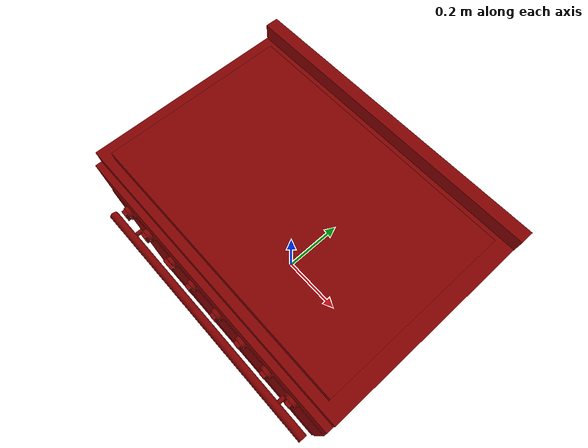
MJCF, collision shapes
<?xml version='1.0' encoding='UTF-8'?>
<mujoco model="model">
  <option timestep="0.002" gravity="0.0 0.0 -9.81"/>
  <compiler angle="radian"/>
  <asset>
    <mesh file="visuals/door.obj" name="door_vis"/>
    <mesh file="visuals/door_Clear.obj" name="door_Clear_vis"/>
    <mesh file="visuals/knob_front_center.obj" name="knob_front_center_vis"/>
    <mesh file="visuals/knob_front_left.obj" name="knob_front_left_vis"/>
    <mesh file="visuals/knob_front_right.obj" name="knob_front_right_vis"/>
    <mesh file="visuals/knob_rear_center.obj" name="knob_rear_center_vis"/>
    <mesh file="visuals/knob_rear_left.obj" name="knob_rear_left_vis"/>
    <mesh file="visuals/knob_rear_right.obj" name="knob_rear_right_vis"/>
    <mesh file="visuals/knob_temp.obj" name="knob_temp_vis"/>
    <mesh file="visuals/knob_time.obj" name="knob_time_vis"/>
    <mesh file="visuals/rack0.obj" name="rack0_vis"/>
    <mesh file="visuals/Body001.obj" name="Body001_vis"/>
    <texture file="visuals/T_BC001.png" name="Body001_material" type="2d"/>
    <material name="Body001_material" rgba="1 1 1 1.0" texture="Body001_material" shininess="0.4472135901451111" specular="3"/>
    <texture file="visuals/T_BC001.png" name="door_material" type="2d"/>
    <material name="door_material" rgba="1 1 1 1.0" texture="door_material" shininess="0.4472135901451111" specular="1"/>
    <texture file="visuals/T_BC001.png" name="door_Clear_material" type="2d"/>
    <material name="door_Clear_material" rgba="1 1 1 0.8" texture="door_Clear_material" shininess="0.4472135901451111" specular="0.3103448502657381"/>
    <texture file="visuals/T_BC001.png" name="knob_front_center_material" type="2d"/>
    <material name="knob_front_center_material" rgba="1 1 1 1.0" texture="knob_front_center_material" shininess="0.4472135901451111" specular="0.3103448502657381"/>
    <texture file="visuals/T_BC001.png" name="knob_front_left_material" type="2d"/>
    <material name="knob_front_left_material" rgba="1 1 1 1.0" texture="knob_front_left_material" shininess="0.4472135901451111" specular="0.3103448502657381"/>
    <texture file="visuals/T_BC001.png" name="knob_front_right_material" type="2d"/>
    <material name="knob_front_right_material" rgba="1 1 1 1.0" texture="knob_front_right_material" shininess="0.4472135901451111" specular="0.3103448502657381"/>
    <texture file="visuals/T_BC001.png" name="knob_rear_center_material" type="2d"/>
    <material name="knob_rear_center_material" rgba="1 1 1 1.0" texture="knob_rear_center_material" shininess="0.4472135901451111" specular="0.3103448502657381"/>
    <texture file="visuals/T_BC001.png" name="knob_rear_left_material" type="2d"/>
    <material name="knob_rear_left_material" rgba="1 1 1 1.0" texture="knob_rear_left_material" shininess="0.4472135901451111" specular="0.3103448502657381"/>
    <texture file="visuals/T_BC001.png" name="knob_rear_right_material" type="2d"/>
    <material name="knob_rear_right_material" rgba="1 1 1 1.0" texture="knob_rear_right_material" shininess="0.4472135901451111" specular="0.3103448502657381"/>
    <texture file="visuals/T_BC001.png" name="knob_temp_material" type="2d"/>
    <material name="knob_temp_material" rgba="1 1 1 1.0" texture="knob_temp_material" shininess="0.4472135901451111" specular="0.3103448502657381"/>
    <texture file="visuals/T_BC001.png" name="knob_time_material" type="2d"/>
    <material name="knob_time_material" rgba="1 1 1 1.0" texture="knob_time_material" shininess="0.4472135901451111" specular="0.3103448502657381"/>
    <texture file="visuals/T_BC001.png" name="rack0_material" type="2d"/>
    <material name="rack0_material" rgba="1 1 1 1.0" texture="rack0_material" shininess="0.4472135901451111" specular="2"/>
  </asset>
  <default>
    <default class="visual">
      <geom conaffinity="0" contype="0" group="1" type="mesh"/>
    </default>
    <default class="collision">
      <geom group="0" rgba="0.5 0 0 0.5"/>
    </default>
    <default class="spawn">
      <geom group="0" rgba="1 1 1 0.5" contype="0" conaffinity="0"/>
      <site group="0" rgba="1 1 1 0.5"/>
    </default>
    <default class="region">
      <geom group="1" conaffinity="0" contype="0" rgba="0 1 0 0"/>
    </default>
  </default>
  <worldbody>
    <body>
      <body name="object">
        <geom mesh="Body001_vis" type="mesh" solimp="0.998 0.998 0.001" solref="0.001 1" friction="0.95 0.3 0.1" class="visual" material="Body001_material"/>
        <geom class="collision" type="box" pos="0.00020489 0.03419053 -0.32283562" size="0.4453953504562378 0.3114505708217621 0.09341475367546082" quat="1.0 0.0 0.0 0.0"/>
        <geom class="collision" type="box" pos="0.00020489 0.03402106 0.33483633" size="0.4453953504562378 0.3116200566291809 0.09698358178138733" quat="1.0 0.0 0.0 0.0"/>
        <geom class="collision" type="box" pos="-0.43040445 0.03451906 0.00624013" size="0.014781756326556206 0.31124597787857056 0.23470935225486755" quat="1.0 0.0 0.0 0.0"/>
        <geom class="collision" type="box" pos="0.43071929 0.03346806 0.00624013" size="0.014881174080073833 0.31124594807624817 0.23470935225486755" quat="1.0 0.0 0.0 0.0"/>
        <geom class="collision" type="box" pos="0.00020489 0.33312962 -0.00134300" size="0.4453953504562378 0.01251149270683527 0.2447463721036911" quat="1.0 0.0 0.0 0.0"/>
        <geom class="collision" type="box" pos="0.00020489 0.32622731 0.43035719" size="0.4453953504562378 0.018547752872109413 0.04469680413603783" quat="1.0 0.0 0.0 0.0"/>
        <geom class="collision" type="box" pos="-0.40324122 -0.00720590 0.01569838" size="0.014781797304749489 0.23607884347438812 0.013486760668456554" quat="1.0 0.0 0.0 0.0"/>
        <geom class="collision" type="box" pos="0.40592659 -0.00720590 0.01569838" size="0.014781794510781765 0.23607884347438812 0.013486760668456554" quat="1.0 0.0 0.0 0.0"/>
        <geom class="collision" type="cylinder" pos="-0.39737013 -0.24187388 -0.44423994" size="0.025929519906640053 0.030012857168912888" quat="1.0 0.0 0.0 0.0"/>
        <geom class="collision" type="cylinder" pos="-0.39737013 0.29562125 -0.44423994" size="0.025929519906640053 0.030012857168912888" quat="1.0 0.0 0.0 0.0"/>
        <geom class="collision" type="cylinder" pos="0.39789397 -0.24187388 -0.44423994" size="0.025929519906640053 0.030012857168912888" quat="1.0 0.0 0.0 0.0"/>
        <geom class="collision" type="cylinder" pos="0.39789397 0.29562125 -0.44423994" size="0.025929519906640053 0.030012857168912888" quat="1.0 0.0 0.0 0.0"/>
        <geom class="collision" type="box" pos="0.00020489 -0.28630554 -0.34042615" size="0.4453953504562378 0.012395961210131645 0.07349462062120438" quat="1.0 0.0 0.0 0.0"/>
        <geom class="collision" type="box" pos="0.00020489 -0.28314411 0.32981452" size="0.44539615511894226 0.014023927971720695 0.06135963648557663" quat="1.0 0.0 0.0 0.0"/>
        <geom class="collision" type="box" pos="0.00628563 0.00986810 0.44937950" size="0.393888920545578 0.26198551058769226 0.017560163512825966" quat="1.0 0.0 0.0 0.0"/>
        <body name="door">
          <joint axis="1.0 0.0 0.0" pos="-0.00064370 -0.29751586 -0.24929851" limited="true" name="door_joint" range="0.0 1.5707963267948966" type="hinge" damping="1" frictionloss="1" armature=".01" stiffness="0.05"/>
          <geom mesh="door_vis" type="mesh" solimp="0.998 0.998 0.001" solref="0.001 1" friction="0.95 0.3 0.1" class="visual" material="door_material"/>
          <geom class="collision" type="box" pos="0.00000001 -0.28988966 0.00380169" size="0.4506116509437561 0.0088118314743042 0.25270822644233704" quat="1.0 0.0 0.0 0.0" name="door_main"/>
          <geom class="collision" type="cylinder" pos="-0.32991475 -0.31786835 0.17893517" size="0.006746548693627119 0.012276619672775269" quat="0.7071068286895752 0.7071067690849304 -1.5700924318127872e-16 -5.9269340452702814e-24"/>
          <geom class="collision" type="cylinder" pos="0.31512007 -0.31786835 0.17893517" size="0.006746548693627119 0.012276619672775269" quat="0.7071068286895752 0.7071067690849304 -1.5700924318127872e-16 -5.9269340452702814e-24"/>
          <geom class="collision" type="cylinder" pos="-0.00282189 -0.33929812 0.18105300" size="0.013173732906579971 0.42605987191200256" quat="0.5000000596046448 0.5 -0.4999999701976776 -0.5" name="door_handle_main"/>
          <geom class="collision" type="box" pos="0.00020489 -0.29479712 0.00074750" size="0.3188565969467163 0.002739383140578866 0.12557406723499298" quat="1.0 0.0 0.0 0.0"/>
          <body name="door_Clear">
            <geom mesh="door_Clear_vis" type="mesh" solimp="0.998 0.998 0.001" solref="0.001 1" friction="0.95 0.3 0.1" class="visual" material="door_Clear_material"/>
            <geom class="collision" type="box" pos="0.00020489 -0.29479712 0.00074750" size="0.3188565969467163 0.002739383140578866 0.12557406723499298" quat="1.0 0.0 0.0 0.0"/>
          </body>
        </body>
        <body name="knob_front_center">
          <joint axis="0.0 -1.0 0.0" pos="0.06840758 -0.31041008 0.32652795" limited="true" name="knob_front_center_joint" range="0.0 3.141592653589793" type="hinge" damping="0.05" frictionloss="0.75" armature="1"/>
          <geom mesh="knob_front_center_vis" type="mesh" solimp="0.998 0.998 0.001" solref="0.001 1" friction="0.95 0.3 0.1" class="visual" material="knob_front_center_material"/>
          <geom class="collision" type="cylinder" pos="0.06830750 -0.30637434 0.32651359" size="0.018944857642054558 0.005755343474447727" quat="0.7071068286895752 0.7071067690849304 -1.5700924318127872e-16 -5.9269340452702814e-24" friction="100 0.5 0.01"/>
          <geom class="collision" type="box" pos="0.06844643 -0.31593495 0.32681349" size="0.0076674893498420715 0.005506603978574276 0.017259594053030014" quat="1.0 0.0 0.0 0.0" name="knob_front_center_main" friction="100 0.5 0.01"/>
        </body>
        <body name="knob_front_left">
          <joint axis="0.0 -1.0 0.0" pos="-0.30868590 -0.31041008 0.32652795" limited="true" name="knob_front_left_joint" range="0.0 3.141592653589793" type="hinge" damping="0.05" frictionloss="0.75" armature="1"/>
          <geom mesh="knob_front_left_vis" type="mesh" solimp="0.998 0.998 0.001" solref="0.001 1" friction="0.95 0.3 0.1" class="visual" material="knob_front_left_material"/>
          <geom class="collision" type="cylinder" pos="-0.30880588 -0.30637434 0.32643613" size="0.019034666940569878 0.005782627500593662" quat="0.7071068286895752 0.7071067690849304 -1.5700924318127872e-16 -5.9269340452702814e-24" friction="100 0.5 0.01"/>
          <geom class="collision" type="box" pos="-0.30889696 -0.31593495 0.32681349" size="0.0076674893498420715 0.005506603978574276 0.017259594053030014" quat="1.0 0.0 0.0 0.0" name="knob_front_left_main" friction="100 0.5 0.01"/>
        </body>
        <body name="knob_front_right">
          <joint axis="0.0 -1.0 0.0" pos="0.34271011 -0.31041008 0.32652795" limited="true" name="knob_front_right_joint" range="0.0 3.141592653589793" type="hinge" damping="0.05" frictionloss="0.75" armature="1"/>
          <geom mesh="knob_front_right_vis" type="mesh" solimp="0.998 0.998 0.001" solref="0.001 1" friction="0.95 0.3 0.1" class="visual" material="knob_front_right_material"/>
          <geom class="collision" type="cylinder" pos="0.34278208 -0.30637434 0.32634208" size="0.018733950331807137 0.005691270809620619" quat="0.7071068286895752 0.7071067690849304 -1.5700924318127872e-16 -5.9269340452702814e-24" friction="100 0.5 0.01"/>
          <geom class="collision" type="box" pos="0.34231430 -0.31593495 0.32681349" size="0.0076674893498420715 0.005506603978574276 0.017259594053030014" quat="1.0 0.0 0.0 0.0" name="knob_front_right_main" friction="100 0.5 0.01"/>
        </body>
        <body name="knob_rear_center">
          <joint axis="0.0 -1.0 0.0" pos="0.15972558 -0.31041008 0.32652795" limited="true" name="knob_rear_center_joint" range="0.0 3.141592653589793" type="hinge" damping="0.05" armature="1" frictionloss="0.75"/>
          <geom mesh="knob_rear_center_vis" type="mesh" solimp="0.998 0.998 0.001" solref="0.001 1" friction="0.95 0.3 0.1" class="visual" material="knob_rear_center_material"/>
          <geom class="collision" type="cylinder" pos="0.16076200 -0.30637434 0.32647541" size="0.01846225932240486 0.005608732812106609" quat="0.7071068286895752 0.7071067690849304 -1.5700924318127872e-16 -5.9269340452702814e-24" friction="100 0.5 0.01"/>
          <geom class="collision" type="box" pos="0.16054612 -0.31593495 0.32681349" size="0.0076674893498420715 0.005506603978574276 0.017259594053030014" quat="1.0 0.0 0.0 0.0" name="knob_rear_center_main" friction="100 0.5 0.01"/>
        </body>
        <body name="knob_rear_left">
          <joint axis="0.0 -1.0 0.0" pos="-0.22001188 -0.31041008 0.32652795" limited="true" name="knob_rear_left_joint" range="0.0 3.141592653589793" type="hinge" damping="0.05" armature="1" frictionloss="0.75"/>
          <geom mesh="knob_rear_left_vis" type="mesh" solimp="0.998 0.998 0.001" solref="0.001 1" friction="0.95 0.3 0.1" class="visual" material="knob_rear_left_material"/>
          <geom class="collision" type="cylinder" pos="-0.21977109 -0.30637434 0.32643819" size="0.019581664353609085 0.00594880199059844" quat="0.7071068286895752 0.7071067690849304 -1.5700924318127872e-16 -5.9269340452702814e-24" friction="100 0.5 0.01"/>
          <geom class="collision" type="box" pos="-0.22015938 -0.31593495 0.32681349" size="0.0076674893498420715 0.005506603978574276 0.017259594053030014" quat="1.0 0.0 0.0 0.0" name="knob_rear_left_main" friction="100 0.5 0.01"/>
        </body>
        <body name="knob_rear_right">
          <joint axis="0.0 -1.0 0.0" pos="0.25376025 -0.31041008 0.32652795" limited="true" name="knob_rear_right_joint" range="0.0 3.141592653589793" type="hinge" damping="0.05" armature="1" frictionloss="0.75"/>
          <geom mesh="knob_rear_right_vis" type="mesh" solimp="0.998 0.998 0.001" solref="0.001 1" friction="0.95 0.3 0.1" class="visual" material="knob_rear_right_material"/>
          <geom class="collision" type="cylinder" pos="0.25414777 -0.30628839 0.32673851" size="0.018716387450695038 0.005685935728251934" quat="0.7071068286895752 0.7071067690849304 -1.5700924318127872e-16 -5.9269340452702814e-24" friction="100 0.5 0.01"/>
          <geom class="collision" type="box" pos="0.25435871 -0.31593495 0.32681349" size="0.0076674893498420715 0.005506603978574276 0.017259594053030014" quat="1.0 0.0 0.0 0.0" name="knob_rear_right_main" friction="100 0.5 0.01"/>
        </body>
        <body name="knob_temp">
          <joint axis="0.0 1.0 0.0" pos="-0.03163878 -0.31041008 0.32815427" limited="true" name="knob_temp_joint" range="0.0 5.672320068981571" type="hinge" damping="0.05" armature="1" frictionloss="0.75"/>
          <geom mesh="knob_temp_vis" type="mesh" solimp="0.998 0.998 0.001" solref="0.001 1" friction="0.95 0.3 0.1" class="visual" material="knob_temp_material"/>
          <geom class="collision" type="cylinder" pos="-0.03180428 -0.30637434 0.32789874" size="0.017294375225901604 0.005253936164081097" quat="0.7071068286895752 0.7071067690849304 -1.5700924318127872e-16 -5.9269340452702814e-24" friction="100 0.5 0.01"/>
          <geom class="collision" type="box" pos="-0.03145125 -0.31593495 0.32835418" size="0.006903624162077904 0.005506603978574276 0.01585039310157299" quat="1.0 0.0 0.0 0.0" name="knob_temp_main" friction="100 0.5 0.01"/>
        </body>
        <body name="knob_time">
          <joint axis="0.0 1.0 0.0" pos="-0.11777196 -0.31041008 0.32729831" limited="true" name="knob_time_joint" range="0.0 5.235987755982989" type="hinge" damping="0.05" armature="1" frictionloss="0.75"/>
          <geom mesh="knob_time_vis" type="mesh" solimp="0.998 0.998 0.001" solref="0.001 1" friction="0.95 0.3 0.1" class="visual" material="knob_time_material"/>
          <geom class="collision" type="cylinder" pos="-0.11786969 -0.30637434 0.32727489" size="0.017090214416384697 0.005191913340240717" quat="0.7071068286895752 0.7071067690849304 -1.5700924318127872e-16 -5.9269340452702814e-24" friction="100 0.5 0.01"/>
          <geom class="collision" type="box" pos="-0.11765278 -0.31593495 0.32740313" size="0.015850398689508438 0.005506605841219425 0.006903628818690777" quat="1.0 0.0 0.0 0.0" name="knob_time_main" friction="100 0.5 0.01"/>
        </body>
        <body name="rack0">
          <geom class="region" name="reg_rack0" type="box" pos="-0.001232205000000014 -0.043840544999999995 0.14225079999999998" size="0.37755946500000004 0.190055765 0.09398364"/>
          <joint axis="0.0 -1.0 0.0" pos="-0.00115791 -0.04561884 0.03961487" limited="true" name="rack0_joint" range="0.0 0.35" type="slide" damping="1" frictionloss="1" armature=".01" stiffness="0.05"/>
          <geom mesh="rack0_vis" type="mesh" solimp="0.998 0.998 0.001" solref="0.001 1" friction="0.95 0.3 0.1" class="visual" material="rack0_material"/>
          <geom class="collision" type="box" pos="0.00020489 -0.04379555 0.04396872" size="0.3874490559101105 0.18999652564525604 0.0037022049073129892" quat="1.0 0.0 0.0 0.0"/>
        </body>
        <geom class="region" name="reg_int" type="box" pos="0.00037114500000001716 0.020084519999999995 0.005387929999999999" size="0.383976665 0.29605767 0.23071992000000002"/>
        <site type="cylinder" rgba="0.3 0.4 1 0.5" size="0.052774783223867416 0.015016894787549973" pos="0.26255980 0.15641693 0.44343024" name="burner_on_rear_right"/>
        <site type="cylinder" rgba="0.3 0.4 1 0.5" size="0.05270331725478172 0.015016894787549973" pos="-0.25428548 0.15124843 0.44343024" name="burner_on_rear_left"/>
        <site type="cylinder" rgba="0.3 0.4 1 0.5" size="0.03870527446269989 0.015016895718872547" pos="0.26398471 -0.11761692 0.44343022" name="burner_on_front_right"/>
        <site type="cylinder" rgba="0.3 0.4 1 0.5" size="0.06828669458627701 0.015016899444162846" pos="-0.25428548 -0.11761689 0.44343022" name="burner_on_front_left"/>
        <site type="cylinder" rgba="0.3 0.4 1 0.5" size="0.052774783223867416 0.015016894787549973" pos="0.00487833 0.15124843 0.44343024" name="burner_on_rear_center"/>
        <site type="cylinder" rgba="0.3 0.4 1 0.5" size="0.052774783223867416 0.015016894787549973" pos="0.00487833 -0.11819735 0.44343024" name="burner_on_front_center"/>
        <site type="cylinder" rgba="0.5 0 0 0" size="0.052774783223867416 5.0000002374872565e-05" pos="0.26255980 0.15641693 0.46699098" name="burner_rear_right_place_site"/>
        <site type="cylinder" rgba="0.5 0 0 0" size="0.05270331725478172 5.0000002374872565e-05" pos="-0.25428548 0.15124843 0.46699098" name="burner_rear_left_place_site"/>
        <site type="cylinder" rgba="0.5 0 0 0" size="0.03870527446269989 4.999999873689376e-05" pos="0.26398471 -0.11761692 0.46699098" name="burner_front_right_place_site"/>
        <site type="cylinder" rgba="0.5 0 0 0" size="0.06828669458627701 5.0000002374872565e-05" pos="-0.25428548 -0.11761689 0.46699098" name="burner_front_left_place_site"/>
        <site type="cylinder" rgba="0.5 0 0 0" size="0.052774783223867416 5.0000002374872565e-05" pos="0.00487833 0.15124843 0.46699098" name="burner_rear_center_place_site"/>
        <site type="cylinder" rgba="0.5 0 0 0" size="0.052774783223867416 5.0000002374872565e-05" pos="0.00487833 -0.11819735 0.46699098" name="burner_front_center_place_site"/>
        <geom class="region" name="reg_main" type="box" pos="9.999999994736442e-09 0.023990574999999986 -0.02157022" size="0.45161168 0.32954801499999997 0.4543903"/>
      </body>
    </body>
  </worldbody>
  <actuator>
    <motor name="door_joint_actuator" joint="door_joint" gear="50"/>
    <motor name="knob_front_center_joint_actuator" joint="knob_front_center_joint" gear="50"/>
    <motor name="knob_front_left_joint_actuator" joint="knob_front_left_joint" gear="50"/>
    <motor name="knob_front_right_joint_actuator" joint="knob_front_right_joint" gear="50"/>
    <motor name="knob_rear_center_joint_actuator" joint="knob_rear_center_joint" gear="50"/>
    <motor name="knob_rear_left_joint_actuator" joint="knob_rear_left_joint" gear="50"/>
    <motor name="knob_rear_right_joint_actuator" joint="knob_rear_right_joint" gear="50"/>
    <motor name="knob_temp_joint_actuator" joint="knob_temp_joint" gear="50"/>
    <motor name="knob_time_joint_actuator" joint="knob_time_joint" gear="50"/>
    <motor name="rack0_joint_actuator" joint="rack0_joint" gear="50"/>
  </actuator>
</mujoco>
